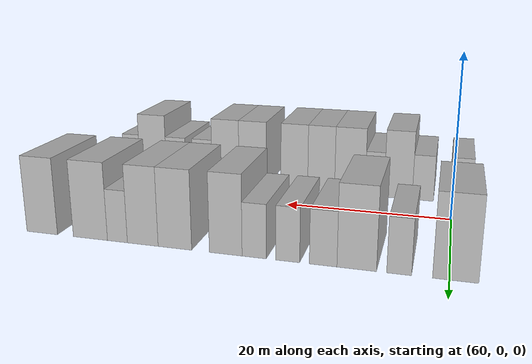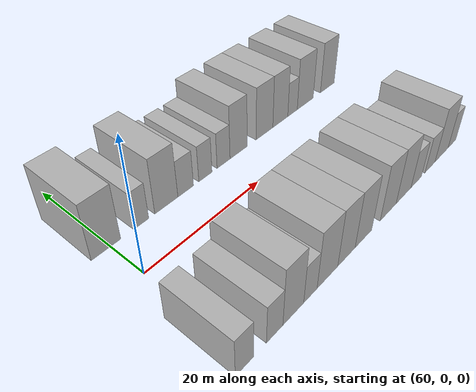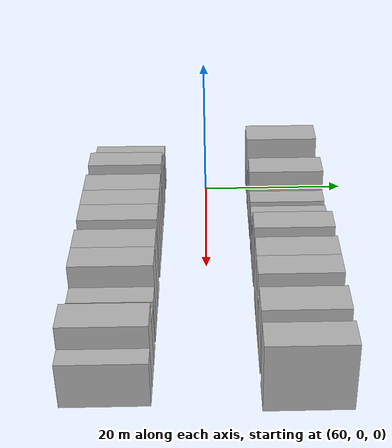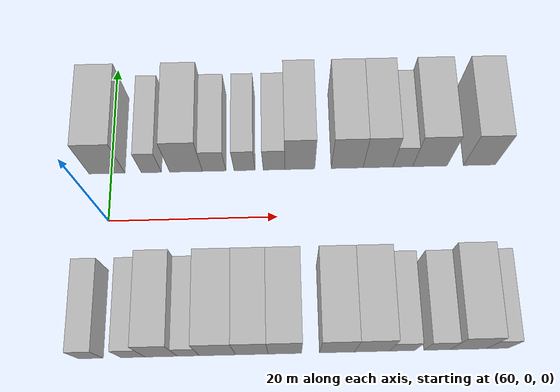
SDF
<sdf version="1.6">
 <world name="default">
  <model name="building_13">
   <static>1</static>
   <pose>59.4143 11.0000 0 0.000000 0.000000 1.570796</pose>
   <link name="link">
    <pose>0 0 4.50 0 0 0</pose>
    <collision name="collision"><geometry><box><size>10.0000 4.3462 9.0000</size></box></geometry></collision>
    <visual name="visual">
     <cast_shadows>0</cast_shadows>
     <geometry><box><size>10.0000 4.3462 9.0000</size></box></geometry>
     <material>
      <script>
       <uri>model://HANNAS_wall/materials/scripts</uri>
       <uri>model://HANNAS_wall/materials/textures</uri>
       <name>vrc/HANNAS_wall</name>
      </script>
     </material>
    </visual>
   </link>
  </model>
  <model name="building_14">
   <static>1</static>
   <pose>64.8036 11.0000 0 0.000000 0.000000 1.570796</pose>
   <link name="link">
    <pose>0 0 3.00 0 0 0</pose>
    <collision name="collision"><geometry><box><size>10.0000 2.4323 6.0000</size></box></geometry></collision>
    <visual name="visual">
     <cast_shadows>0</cast_shadows>
     <geometry><box><size>10.0000 2.4323 6.0000</size></box></geometry>
     <material>
      <script>
       <uri>model://HANNAS_wall/materials/scripts</uri>
       <uri>model://HANNAS_wall/materials/textures</uri>
       <name>vrc/HANNAS_wall</name>
      </script>
     </material>
    </visual>
   </link>
  </model>
  <model name="building_15">
   <static>1</static>
   <pose>69.0086 11.0000 0 0.000000 0.000000 1.570796</pose>
   <link name="link">
    <pose>0 0 4.50 0 0 0</pose>
    <collision name="collision"><geometry><box><size>10.0000 3.9777 9.0000</size></box></geometry></collision>
    <visual name="visual">
     <cast_shadows>0</cast_shadows>
     <geometry><box><size>10.0000 3.9777 9.0000</size></box></geometry>
     <material>
      <script>
       <uri>model://HANNAS_wall/materials/scripts</uri>
       <uri>model://HANNAS_wall/materials/textures</uri>
       <name>vrc/HANNAS_wall</name>
      </script>
     </material>
    </visual>
   </link>
  </model>
  <model name="building_16">
   <static>1</static>
   <pose>72.4203 11.0000 0 0.000000 0.000000 1.570796</pose>
   <link name="link">
    <pose>0 0 3.00 0 0 0</pose>
    <collision name="collision"><geometry><box><size>10.0000 2.8458 6.0000</size></box></geometry></collision>
    <visual name="visual">
     <cast_shadows>0</cast_shadows>
     <geometry><box><size>10.0000 2.8458 6.0000</size></box></geometry>
     <material>
      <script>
       <uri>model://HANNAS_wall/materials/scripts</uri>
       <uri>model://HANNAS_wall/materials/textures</uri>
       <name>vrc/HANNAS_wall</name>
      </script>
     </material>
    </visual>
   </link>
  </model>
  <model name="building_17">
   <static>1</static>
   <pose>76.1147 11.0000 0 0.000000 0.000000 1.570796</pose>
   <link name="link">
    <pose>0 0 3.00 0 0 0</pose>
    <collision name="collision"><geometry><box><size>10.0000 2.5430 6.0000</size></box></geometry></collision>
    <visual name="visual">
     <cast_shadows>0</cast_shadows>
     <geometry><box><size>10.0000 2.5430 6.0000</size></box></geometry>
     <material>
      <script>
       <uri>model://HANNAS_wall/materials/scripts</uri>
       <uri>model://HANNAS_wall/materials/textures</uri>
       <name>vrc/HANNAS_wall</name>
      </script>
     </material>
    </visual>
   </link>
  </model>
  <model name="building_18">
   <static>1</static>
   <pose>79.7044 11.0000 0 0.000000 0.000000 1.570796</pose>
   <link name="link">
    <pose>0 0 3.00 0 0 0</pose>
    <collision name="collision"><geometry><box><size>10.0000 2.6365 6.0000</size></box></geometry></collision>
    <visual name="visual">
     <cast_shadows>0</cast_shadows>
     <geometry><box><size>10.0000 2.6365 6.0000</size></box></geometry>
     <material>
      <script>
       <uri>model://HANNAS_wall/materials/scripts</uri>
       <uri>model://HANNAS_wall/materials/textures</uri>
       <name>vrc/HANNAS_wall</name>
      </script>
     </material>
    </visual>
   </link>
  </model>
  <model name="building_19">
   <static>1</static>
   <pose>82.8372 11.0000 0 0.000000 0.000000 1.570796</pose>
   <link name="link">
    <pose>0 0 4.50 0 0 0</pose>
    <collision name="collision"><geometry><box><size>10.0000 3.6291 9.0000</size></box></geometry></collision>
    <visual name="visual">
     <cast_shadows>0</cast_shadows>
     <geometry><box><size>10.0000 3.6291 9.0000</size></box></geometry>
     <material>
      <script>
       <uri>model://HANNAS_wall/materials/scripts</uri>
       <uri>model://HANNAS_wall/materials/textures</uri>
       <name>vrc/HANNAS_wall</name>
      </script>
     </material>
    </visual>
   </link>
  </model>
  <model name="building_20">
   <static>1</static>
   <pose>88.5892 11.0000 0 0.000000 0.000000 1.570796</pose>
   <link name="link">
    <pose>0 0 4.50 0 0 0</pose>
    <collision name="collision"><geometry><box><size>10.0000 3.8748 9.0000</size></box></geometry></collision>
    <visual name="visual">
     <cast_shadows>0</cast_shadows>
     <geometry><box><size>10.0000 3.8748 9.0000</size></box></geometry>
     <material>
      <script>
       <uri>model://HANNAS_wall/materials/scripts</uri>
       <uri>model://HANNAS_wall/materials/textures</uri>
       <name>vrc/HANNAS_wall</name>
      </script>
     </material>
    </visual>
   </link>
  </model>
  <model name="building_21">
   <static>1</static>
   <pose>92.3459 11.0000 0 0.000000 0.000000 1.570796</pose>
   <link name="link">
    <pose>0 0 4.50 0 0 0</pose>
    <collision name="collision"><geometry><box><size>10.0000 3.6386 9.0000</size></box></geometry></collision>
    <visual name="visual">
     <cast_shadows>0</cast_shadows>
     <geometry><box><size>10.0000 3.6386 9.0000</size></box></geometry>
     <material>
      <script>
       <uri>model://HANNAS_wall/materials/scripts</uri>
       <uri>model://HANNAS_wall/materials/textures</uri>
       <name>vrc/HANNAS_wall</name>
      </script>
     </material>
    </visual>
   </link>
  </model>
  <model name="building_22">
   <static>1</static>
   <pose>95.3682 11.0000 0 0.000000 0.000000 1.570796</pose>
   <link name="link">
    <pose>0 0 3.00 0 0 0</pose>
    <collision name="collision"><geometry><box><size>10.0000 2.4060 6.0000</size></box></geometry></collision>
    <visual name="visual">
     <cast_shadows>0</cast_shadows>
     <geometry><box><size>10.0000 2.4060 6.0000</size></box></geometry>
     <material>
      <script>
       <uri>model://HANNAS_wall/materials/scripts</uri>
       <uri>model://HANNAS_wall/materials/textures</uri>
       <name>vrc/HANNAS_wall</name>
      </script>
     </material>
    </visual>
   </link>
  </model>
  <model name="building_23">
   <static>1</static>
   <pose>98.6794 11.0000 0 0.000000 0.000000 1.570796</pose>
   <link name="link">
    <pose>0 0 4.50 0 0 0</pose>
    <collision name="collision"><geometry><box><size>10.0000 4.2166 9.0000</size></box></geometry></collision>
    <visual name="visual">
     <cast_shadows>0</cast_shadows>
     <geometry><box><size>10.0000 4.2166 9.0000</size></box></geometry>
     <material>
      <script>
       <uri>model://HANNAS_wall/materials/scripts</uri>
       <uri>model://HANNAS_wall/materials/textures</uri>
       <name>vrc/HANNAS_wall</name>
      </script>
     </material>
    </visual>
   </link>
  </model>
  <model name="building_24">
   <static>1</static>
   <pose>104.7415 11.0000 0 0.000000 0.000000 1.570796</pose>
   <link name="link">
    <pose>0 0 4.50 0 0 0</pose>
    <collision name="collision"><geometry><box><size>10.0000 3.9074 9.0000</size></box></geometry></collision>
    <visual name="visual">
     <cast_shadows>0</cast_shadows>
     <geometry><box><size>10.0000 3.9074 9.0000</size></box></geometry>
     <material>
      <script>
       <uri>model://HANNAS_wall/materials/scripts</uri>
       <uri>model://HANNAS_wall/materials/textures</uri>
       <name>vrc/HANNAS_wall</name>
      </script>
     </material>
    </visual>
   </link>
  </model>
  <model name="building_64">
   <static>1</static>
   <pose>58.9187 -11.0000 0 0.000000 0.000000 1.570796</pose>
   <link name="link">
    <pose>0 0 3.00 0 0 0</pose>
    <collision name="collision"><geometry><box><size>10.0000 2.7091 6.0000</size></box></geometry></collision>
    <visual name="visual">
     <cast_shadows>0</cast_shadows>
     <geometry><box><size>10.0000 2.7091 6.0000</size></box></geometry>
     <material>
      <script>
       <uri>model://HANNAS_wall/materials/scripts</uri>
       <uri>model://HANNAS_wall/materials/textures</uri>
       <name>vrc/HANNAS_wall</name>
      </script>
     </material>
    </visual>
   </link>
  </model>
  <model name="building_65">
   <static>1</static>
   <pose>63.6160 -11.0000 0 0.000000 0.000000 1.570796</pose>
   <link name="link">
    <pose>0 0 3.00 0 0 0</pose>
    <collision name="collision"><geometry><box><size>10.0000 2.6856 6.0000</size></box></geometry></collision>
    <visual name="visual">
     <cast_shadows>0</cast_shadows>
     <geometry><box><size>10.0000 2.6856 6.0000</size></box></geometry>
     <material>
      <script>
       <uri>model://HANNAS_wall/materials/scripts</uri>
       <uri>model://HANNAS_wall/materials/textures</uri>
       <name>vrc/HANNAS_wall</name>
      </script>
     </material>
    </visual>
   </link>
  </model>
  <model name="building_66">
   <static>1</static>
   <pose>66.7633 -11.0000 0 0.000000 0.000000 1.570796</pose>
   <link name="link">
    <pose>0 0 4.50 0 0 0</pose>
    <collision name="collision"><geometry><box><size>10.0000 3.6089 9.0000</size></box></geometry></collision>
    <visual name="visual">
     <cast_shadows>0</cast_shadows>
     <geometry><box><size>10.0000 3.6089 9.0000</size></box></geometry>
     <material>
      <script>
       <uri>model://HANNAS_wall/materials/scripts</uri>
       <uri>model://HANNAS_wall/materials/textures</uri>
       <name>vrc/HANNAS_wall</name>
      </script>
     </material>
    </visual>
   </link>
  </model>
  <model name="building_67">
   <static>1</static>
   <pose>69.8033 -11.0000 0 0.000000 0.000000 1.570796</pose>
   <link name="link">
    <pose>0 0 3.00 0 0 0</pose>
    <collision name="collision"><geometry><box><size>10.0000 2.4711 6.0000</size></box></geometry></collision>
    <visual name="visual">
     <cast_shadows>0</cast_shadows>
     <geometry><box><size>10.0000 2.4711 6.0000</size></box></geometry>
     <material>
      <script>
       <uri>model://HANNAS_wall/materials/scripts</uri>
       <uri>model://HANNAS_wall/materials/textures</uri>
       <name>vrc/HANNAS_wall</name>
      </script>
     </material>
    </visual>
   </link>
  </model>
  <model name="building_68">
   <static>1</static>
   <pose>73.0577 -11.0000 0 0.000000 0.000000 1.570796</pose>
   <link name="link">
    <pose>0 0 4.50 0 0 0</pose>
    <collision name="collision"><geometry><box><size>10.0000 4.0379 9.0000</size></box></geometry></collision>
    <visual name="visual">
     <cast_shadows>0</cast_shadows>
     <geometry><box><size>10.0000 4.0379 9.0000</size></box></geometry>
     <material>
      <script>
       <uri>model://HANNAS_wall/materials/scripts</uri>
       <uri>model://HANNAS_wall/materials/textures</uri>
       <name>vrc/HANNAS_wall</name>
      </script>
     </material>
    </visual>
   </link>
  </model>
  <model name="building_69">
   <static>1</static>
   <pose>76.8930 -11.0000 0 0.000000 0.000000 1.570796</pose>
   <link name="link">
    <pose>0 0 4.50 0 0 0</pose>
    <collision name="collision"><geometry><box><size>10.0000 3.6325 9.0000</size></box></geometry></collision>
    <visual name="visual">
     <cast_shadows>0</cast_shadows>
     <geometry><box><size>10.0000 3.6325 9.0000</size></box></geometry>
     <material>
      <script>
       <uri>model://HANNAS_wall/materials/scripts</uri>
       <uri>model://HANNAS_wall/materials/textures</uri>
       <name>vrc/HANNAS_wall</name>
      </script>
     </material>
    </visual>
   </link>
  </model>
  <model name="building_70">
   <static>1</static>
   <pose>80.5640 -11.0000 0 0.000000 0.000000 1.570796</pose>
   <link name="link">
    <pose>0 0 4.50 0 0 0</pose>
    <collision name="collision"><geometry><box><size>10.0000 3.7095 9.0000</size></box></geometry></collision>
    <visual name="visual">
     <cast_shadows>0</cast_shadows>
     <geometry><box><size>10.0000 3.7095 9.0000</size></box></geometry>
     <material>
      <script>
       <uri>model://HANNAS_wall/materials/scripts</uri>
       <uri>model://HANNAS_wall/materials/textures</uri>
       <name>vrc/HANNAS_wall</name>
      </script>
     </material>
    </visual>
   </link>
  </model>
  <model name="building_71">
   <static>1</static>
   <pose>86.3734 -11.0000 0 0.000000 0.000000 1.570796</pose>
   <link name="link">
    <pose>0 0 4.50 0 0 0</pose>
    <collision name="collision"><geometry><box><size>10.0000 3.9093 9.0000</size></box></geometry></collision>
    <visual name="visual">
     <cast_shadows>0</cast_shadows>
     <geometry><box><size>10.0000 3.9093 9.0000</size></box></geometry>
     <material>
      <script>
       <uri>model://HANNAS_wall/materials/scripts</uri>
       <uri>model://HANNAS_wall/materials/textures</uri>
       <name>vrc/HANNAS_wall</name>
      </script>
     </material>
    </visual>
   </link>
  </model>
  <model name="building_72">
   <static>1</static>
   <pose>90.2793 -11.0000 0 0.000000 0.000000 1.570796</pose>
   <link name="link">
    <pose>0 0 4.50 0 0 0</pose>
    <collision name="collision"><geometry><box><size>10.0000 3.9025 9.0000</size></box></geometry></collision>
    <visual name="visual">
     <cast_shadows>0</cast_shadows>
     <geometry><box><size>10.0000 3.9025 9.0000</size></box></geometry>
     <material>
      <script>
       <uri>model://HANNAS_wall/materials/scripts</uri>
       <uri>model://HANNAS_wall/materials/textures</uri>
       <name>vrc/HANNAS_wall</name>
      </script>
     </material>
    </visual>
   </link>
  </model>
  <model name="building_73">
   <static>1</static>
   <pose>93.6748 -11.0000 0 0.000000 0.000000 1.570796</pose>
   <link name="link">
    <pose>0 0 3.00 0 0 0</pose>
    <collision name="collision"><geometry><box><size>10.0000 2.8886 6.0000</size></box></geometry></collision>
    <visual name="visual">
     <cast_shadows>0</cast_shadows>
     <geometry><box><size>10.0000 2.8886 6.0000</size></box></geometry>
     <material>
      <script>
       <uri>model://HANNAS_wall/materials/scripts</uri>
       <uri>model://HANNAS_wall/materials/textures</uri>
       <name>vrc/HANNAS_wall</name>
      </script>
     </material>
    </visual>
   </link>
  </model>
  <model name="building_74">
   <static>1</static>
   <pose>97.5943 -11.0000 0 0.000000 0.000000 1.570796</pose>
   <link name="link">
    <pose>0 0 3.00 0 0 0</pose>
    <collision name="collision"><geometry><box><size>10.0000 2.9505 6.0000</size></box></geometry></collision>
    <visual name="visual">
     <cast_shadows>0</cast_shadows>
     <geometry><box><size>10.0000 2.9505 6.0000</size></box></geometry>
     <material>
      <script>
       <uri>model://HANNAS_wall/materials/scripts</uri>
       <uri>model://HANNAS_wall/materials/textures</uri>
       <name>vrc/HANNAS_wall</name>
      </script>
     </material>
    </visual>
   </link>
  </model>
  <model name="building_75">
   <static>1</static>
   <pose>101.0947 -11.0000 0 0.000000 0.000000 1.570796</pose>
   <link name="link">
    <pose>0 0 4.50 0 0 0</pose>
    <collision name="collision"><geometry><box><size>10.0000 4.0502 9.0000</size></box></geometry></collision>
    <visual name="visual">
     <cast_shadows>0</cast_shadows>
     <geometry><box><size>10.0000 4.0502 9.0000</size></box></geometry>
     <material>
      <script>
       <uri>model://HANNAS_wall/materials/scripts</uri>
       <uri>model://HANNAS_wall/materials/textures</uri>
       <name>vrc/HANNAS_wall</name>
      </script>
     </material>
    </visual>
   </link>
  </model>
  <model name="building_76">
   <static>1</static>
   <pose>104.3675 -11.0000 0 0.000000 0.000000 1.570796</pose>
   <link name="link">
    <pose>0 0 3.00 0 0 0</pose>
    <collision name="collision"><geometry><box><size>10.0000 2.4955 6.0000</size></box></geometry></collision>
    <visual name="visual">
     <cast_shadows>0</cast_shadows>
     <geometry><box><size>10.0000 2.4955 6.0000</size></box></geometry>
     <material>
      <script>
       <uri>model://HANNAS_wall/materials/scripts</uri>
       <uri>model://HANNAS_wall/materials/textures</uri>
       <name>vrc/HANNAS_wall</name>
      </script>
     </material>
    </visual>
   </link>
  </model>
 </world>
</sdf>
